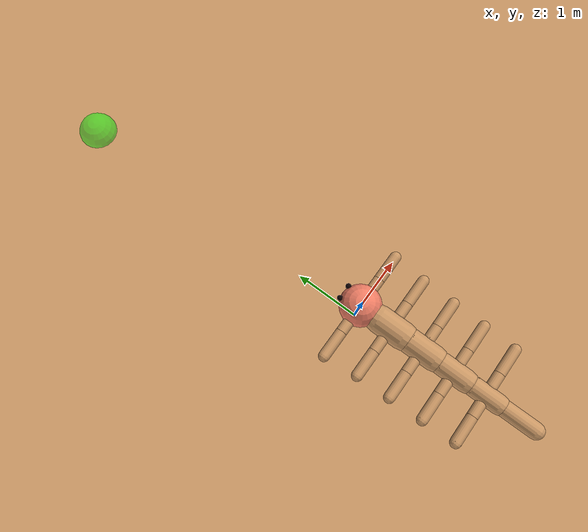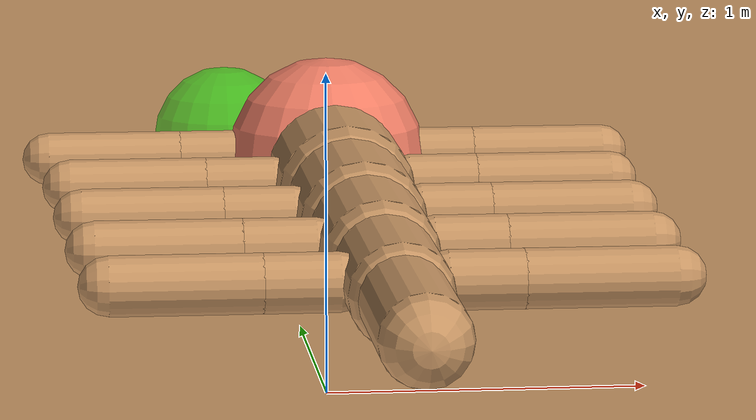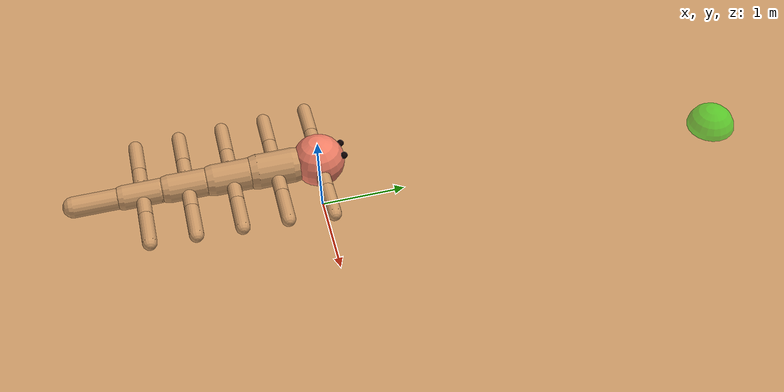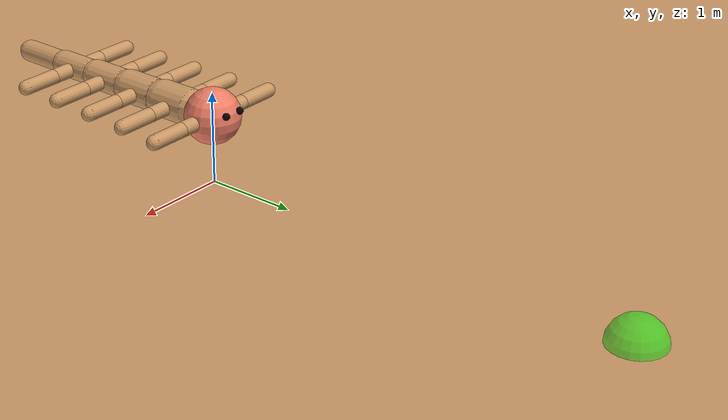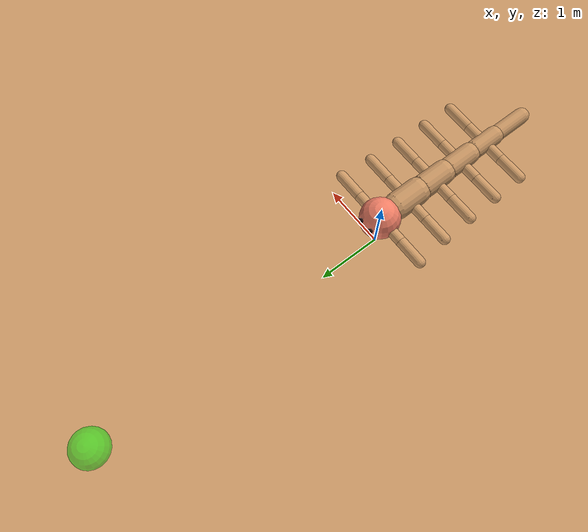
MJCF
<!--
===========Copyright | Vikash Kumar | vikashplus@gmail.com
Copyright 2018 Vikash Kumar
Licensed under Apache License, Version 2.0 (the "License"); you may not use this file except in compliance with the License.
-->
<mujoco model="bug-v200">
  <include file='../utils/basic_scene.xml'/>
  <compiler angle="degree" coordinate="local" inertiafromgeom="true"/>
  <option integrator="RK4" timestep="0.01"/>

  <custom>
    <numeric data="0.0 0.0 0.55 1.0 0.0 0.0 0.0 0.0 1.0 0.0 -1.0 0.0 -1.0 0.0 1.0" name="init_qpos"/>
  </custom>

  <default>
    <joint armature="1" damping="1" limited="true"/>
    <geom conaffinity="0" condim="3" friction="1 0.05 0.005" margin="0.01" rgba="0.8 0.6 0.4 1"/>
  </default>

  <asset>
	<texture name="TexGrass" type="2d" builtin="gradient" random=".15" rgb1="0.25 0.95 0.35" rgb2="0.25 0.7 0.3" width="200" height="200" mark="random" markrgb=".2 .4 .0"/>
	<material name="MatGrass" texture="TexGrass" texrepeat="1 1" specular="1" shininess="1" reflectance="0.1"/>

    <texture builtin="flat" height="1278" mark="cross" markrgb="1 1 1" name="texgeom" random="0.01" rgb1="0.8 0.6 0.4" rgb2="0.8 0.6 0.4" type="cube" width="127"/>
    <material name="geom" texture="texgeom" texuniform="true"/>
  </asset>

  <worldbody>

    <geom conaffinity="0" contype="0" material="MatGrass" name="grass" pos="0 0 0.001" size="16 .02" type="cylinder"/>

    <site name="target" pos="0 5 0" size="0.3" rgba="0 1 0 0.52" />

	<body name="torso0" pos="0 0 0.75">
		<geom pos="0 0 0" size="0.3" type="sphere" rgba="0.95 0.5 0.4 1"/>
		<geom pos="0.1 0.28 .1" size="0.04" type="sphere" rgba=".05 0 0 1"/>
		<geom pos="-.1 0.28 .1" size="0.04" type="sphere" rgba="0.05 0 0 1"/>
		<joint name="Tx" pos="0 0 0" axis="1 0 0" type="slide" range="-10 10" />
        <joint name="Ty" pos="0 0 0" axis="0 1 0" type="slide" range="-10 10" />
        <joint name="Tz" pos="0 0 0" axis="0 0 1" type="slide" range="-1 1" />
        <joint name="Rx" pos="0 0 0" axis="1 0 0" range="-90 90" />
        <joint name="Ry" pos="0 0 0" axis="0 1 0" range="-90 90" />
        <joint name="Rz" pos="0 0 0" axis="0 0 1" range="-1800 1800" />
		<body pos="0.25 0 0">
			<joint axis="0 0 1" name="hipL0" pos="0.0 0.0 0.0" range="-30 30" type="hinge"/>
			<geom fromto="0.0 0.0 0.0 0.2 0.0 0.0" size="0.08" type="capsule"/>
			<body pos="0.2 0.0 0">
				<joint axis="-1 1 0" name="ankleL0" pos="0.0 0.0 0.0" range="30 70" type="hinge"/>
				<geom fromto="0.0 0.0 0.0 0.4 0.0 0.0" size="0.08" type="capsule"/>
			</body>
		</body>
		<body pos="-0.25 0 0">
			<joint axis="0 0 1" name="hipR0" pos="0.0 0.0 0.0" range="-30 30" type="hinge"/>
			<geom fromto="0.0 0.0 0.0 -0.2 0.0 0.0" size="0.08" type="capsule"/>
			<body pos="-0.2 0.0 0">
				<joint axis="1 1 0" name="ankleR0" pos="0.0 0.0 0.0" range="-70 -30" type="hinge"/>
				<geom fromto="0.0 0.0 0.0 -0.4 0.0 0.0" size="0.08" type="capsule"/>
			</body>
		</body>

		<body name="torso1" pos="0 -.5 0">
			<geom pos="0 0 0" size="0.2 0.2" type="capsule" euler="90 0 0"/>
			<joint axis="0 0 1" name="spine1" pos="0.0 0.3 0.0" range="-30 30" type="hinge"/>
			<body pos="0.2 0 0">
				<joint axis="0 0 1" name="hipL1" pos="0.0 0.0 0.0" range="-30 30" type="hinge"/>
				<geom fromto="0.0 0.0 0.0 0.2 0.0 0.0" size="0.08" type="capsule"/>
				<body pos="0.2 0.0 0">
					<joint axis="-1 1 0" name="ankleL1" pos="0.0 0.0 0.0" range="30 70" type="hinge"/>
					<geom fromto="0.0 0.0 0.0 0.4 0.0 0.0" size="0.08" type="capsule"/>
				</body>
			</body>
			<body pos="-0.2 0 0">
				<joint axis="0 0 1" name="hipR1" pos="0.0 0.0 0.0" range="-30 30" type="hinge"/>
				<geom fromto="0.0 0.0 0.0 -0.2 0.0 0.0" size="0.08" type="capsule"/>
				<body pos="-0.2 0.0 0">
					<joint axis="1 1 0" name="ankleR1" pos="0.0 0.0 0.0" range="-70 -30" type="hinge"/>
					<geom fromto="0.0 0.0 0.0 -0.4 0.0 0.0" size="0.08" type="capsule"/>
				</body>
			</body>

			<body name="torso2" pos="0 -.5 0">
				<geom pos="0 0 0" size="0.18 0.2" type="capsule" euler="90 0 0"/>
				<joint axis="0 0 1" name="spine2" pos="0.0 0.3 0.0" range="-30 30" type="hinge"/>
				<body pos="0.18 0 0">
					<joint axis="0 0 1" name="hipL2" pos="0.0 0.0 0.0" range="-30 30" type="hinge"/>
					<geom fromto="0.0 0.0 0.0 0.2 0.0 0.0" size="0.08" type="capsule"/>
					<body pos="0.2 0.0 0">
						<joint axis="-1 1 0" name="ankleL2" pos="0.0 0.0 0.0" range="30 70" type="hinge"/>
						<geom fromto="0.0 0.0 0.0 0.4 0.0 0.0" size="0.08" type="capsule"/>
					</body>
				</body>
				<body pos="-0.18 0 0">
					<joint axis="0 0 1" name="hipR2" pos="0.0 0.0 0.0" range="-30 30" type="hinge"/>
					<geom fromto="0.0 0.0 0.0 -0.2 0.0 0.0" size="0.08" type="capsule"/>
					<body pos="-0.2 0.0 0">
						<joint axis="1 1 0" name="ankleR2" pos="0.0 0.0 0.0" range="-70 -30" type="hinge"/>
						<geom fromto="0.0 0.0 0.0 -0.4 0.0 0.0" size="0.08" type="capsule"/>
					</body>
				</body>

				<body name="torso3" pos="0 -.5 0">
					<geom pos="0 0 0" size="0.16 0.2" type="capsule" euler="90 0 0"/>
					<joint axis="0 0 1" name="spine3" pos="0.0 0.3 0.0" range="-30 30" type="hinge"/>
					<body pos="0.16 0 0">
						<joint axis="0 0 1" name="hipL3" pos="0.0 0.0 0.0" range="-30 30" type="hinge"/>
						<geom fromto="0.0 0.0 0.0 0.2 0.0 0.0" size="0.08" type="capsule"/>
						<body pos="0.2 0.0 0">
							<joint axis="-1 1 0" name="ankleL3" pos="0.0 0.0 0.0" range="30 70" type="hinge"/>
							<geom fromto="0.0 0.0 0.0 0.4 0.0 0.0" size="0.08" type="capsule"/>
						</body>
					</body>
					<body pos="-0.16 0 0">
						<joint axis="0 0 1" name="hipR3" pos="0.0 0.0 0.0" range="-30 30" type="hinge"/>
						<geom fromto="0.0 0.0 0.0 -0.2 0.0 0.0" size="0.08" type="capsule"/>
						<body pos="-0.2 0.0 0">
							<joint axis="1 1 0" name="ankleR3" pos="0.0 0.0 0.0" range="-70 -30" type="hinge"/>
							<geom fromto="0.0 0.0 0.0 -0.4 0.0 0.0" size="0.08" type="capsule"/>
						</body>
					</body>

					<body name="torso4" pos="0 -.5 0">
						<geom pos="0 0 0" size="0.14 0.2" type="capsule" euler="90 0 0"/>
						<joint axis="0 0 1" name="spine4" pos="0.0 0.3 0.0" range="-30 30" type="hinge"/>
						<body pos="0.14 0 0">
							<joint axis="0 0 1" name="hipL4" pos="0.0 0.0 0.0" range="-30 30" type="hinge"/>
							<geom fromto="0.0 0.0 0.0 0.2 0.0 0.0" size="0.08" type="capsule"/>
							<body pos="0.2 0.0 0">
								<joint axis="-1 1 0" name="ankleL4" pos="0.0 0.0 0.0" range="30 70" type="hinge"/>
								<geom fromto="0.0 0.0 0.0 0.4 0.0 0.0" size="0.08" type="capsule"/>
							</body>
						</body>
						<body pos="-0.14 0 0">
							<joint axis="0 0 1" name="hipR4" pos="0.0 0.0 0.0" range="-30 30" type="hinge"/>
							<geom fromto="0.0 0.0 0.0 -0.2 0.0 0.0" size="0.08" type="capsule"/>
							<body pos="-0.2 0.0 0">
								<joint axis="1 1 0" name="ankleR4" pos="0.0 0.0 0.0" range="-70 -30" type="hinge"/>
								<geom fromto="0.0 0.0 0.0 -0.4 0.0 0.0" size="0.08" type="capsule"/>
							</body>
						</body>

						<body name="torso5" pos="0 -.5 0">
							<geom pos="0 0 0" size="0.12 0.25" type="capsule" euler="90 0 0"/>
							<joint axis="0 0 1" name="spine5" pos="0.0 0.3 0.0" range="-30 30" type="hinge"/>
						</body>
					</body>
				</body>
			</body>
		</body>
    </body>

  </worldbody>
  <actuator>
    <motor ctrllimited="true" ctrlrange="-1.0 1.0" joint="hipR0" gear="300"/>
    <motor ctrllimited="true" ctrlrange="-1.0 1.0" joint="ankleR0" gear="300"/>
    <motor ctrllimited="true" ctrlrange="-1.0 1.0" joint="hipL0" gear="300"/>
    <motor ctrllimited="true" ctrlrange="-1.0 1.0" joint="ankleL0" gear="300"/>

	<motor ctrllimited="true" ctrlrange="-1.0 1.0" joint="hipR1" gear="300"/>
    <motor ctrllimited="true" ctrlrange="-1.0 1.0" joint="ankleR1" gear="300"/>
    <motor ctrllimited="true" ctrlrange="-1.0 1.0" joint="hipL1" gear="300"/>
    <motor ctrllimited="true" ctrlrange="-1.0 1.0" joint="ankleL1" gear="300"/>

	<motor ctrllimited="true" ctrlrange="-1.0 1.0" joint="hipR2" gear="300"/>
    <motor ctrllimited="true" ctrlrange="-1.0 1.0" joint="ankleR2" gear="300"/>
    <motor ctrllimited="true" ctrlrange="-1.0 1.0" joint="hipL2" gear="300"/>
    <motor ctrllimited="true" ctrlrange="-1.0 1.0" joint="ankleL2" gear="300"/>

	<motor ctrllimited="true" ctrlrange="-1.0 1.0" joint="hipR3" gear="300"/>
    <motor ctrllimited="true" ctrlrange="-1.0 1.0" joint="ankleR3" gear="300"/>
    <motor ctrllimited="true" ctrlrange="-1.0 1.0" joint="hipL3" gear="300"/>
    <motor ctrllimited="true" ctrlrange="-1.0 1.0" joint="ankleL3" gear="300"/>

	<motor ctrllimited="true" ctrlrange="-1.0 1.0" joint="hipR4" gear="300"/>
    <motor ctrllimited="true" ctrlrange="-1.0 1.0" joint="ankleR4" gear="300"/>
    <motor ctrllimited="true" ctrlrange="-1.0 1.0" joint="hipL4" gear="300"/>
    <motor ctrllimited="true" ctrlrange="-1.0 1.0" joint="ankleL4" gear="300"/>
  </actuator>
</mujoco>

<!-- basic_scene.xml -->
<mujocoinclude>

    <visual>
        <quality shadowsize="4048"/>
    </visual>

    <asset>
        <texture name="skybox" type="skybox" builtin="gradient" rgb1=".08 .09 .10" rgb2="0 0 0"
               width="800" height="800" mark="random" markrgb=".8 .8 .8"/>
        <texture name="texplane" type="2d" builtin="checker" rgb1=".2 .3 .4" rgb2=".1 0.15 0.2" width="512" height="512" markrgb='.1 .1 .1' mark='random' random='.05'/>
        <material name='MatPlane' reflectance='0.05' texture="texplane" texrepeat="1 1" texuniform="true"/>
    </asset>

    <worldbody>
        <light directional='true' diffuse='.8 .8 .8' specular='0.3 0.3 0.3' pos='-1 -1 1' dir='1 1 -1'/>
		<geom name='floor' pos='0 0 0' size='2 2 .1' conaffinity='1' contype='1' type='plane' material="MatPlane" condim='3'/>
    </worldbody>
</mujocoinclude>
